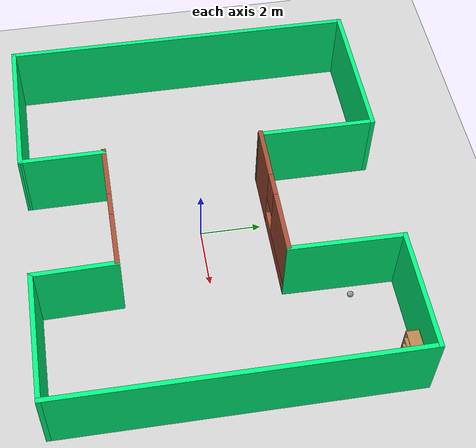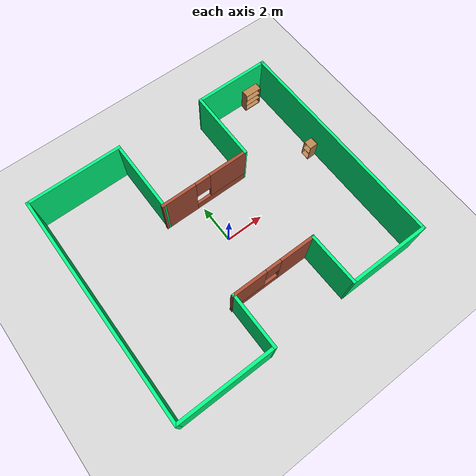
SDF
<sdf version="1.6">
 <world name="default">
  <plugin name="hello" filename="libhello.so"/>
  <light name="sun" type="directional">
   <pose>0 0 10 0 -0 0</pose>
   <diffuse>0.8 0.8 0.8 1</diffuse>
   <specular>0.2 0.2 0.2 1</specular>
   <attenuation>
    <range>1000</range>
    <constant>0.9</constant>
    <linear>0.01</linear>
    <quadratic>0.001</quadratic>
   </attenuation>
   <direction>-0.5 0.1 -0.9</direction>
  </light>
  <model name="ground_plane">
   <static>1</static>
   <link name="link">
    <collision name="collision">
     <geometry><plane><normal>0 0 1</normal><size>100 100</size></plane></geometry>
     <surface>
      <contact><collide_bitmask>65535</collide_bitmask></contact>
      <friction><ode><mu>100</mu><mu2>50</mu2></ode></friction>
     </surface>
    </collision>
    <visual name="visual">
     <cast_shadows>0</cast_shadows>
     <geometry><plane><normal>0 0 1</normal><size>100 100</size></plane></geometry>
     <material>
      <script><uri>file://media/materials/scripts/gazebo.material</uri><name>Gazebo/Grey</name></script>
     </material>
    </visual>
   </link>
  </model>
  <gravity>0 0 -9.8</gravity>
  <magnetic_field>6e-06 2.3e-05 -4.2e-05</magnetic_field>
  <atmosphere type="adiabatic"/>
  <physics name="default_physics" default="0" type="ode">
   <max_step_size>0.001</max_step_size>
   <real_time_factor>1</real_time_factor>
   <real_time_update_rate>1000</real_time_update_rate>
  </physics>
  <scene><ambient>0.4 0.4 0.4 1</ambient><background>0.7 0.7 0.7 1</background><shadows>1</shadows></scene>
  <spherical_coordinates>
   <surface_model>EARTH_WGS84</surface_model>
   <latitude_deg>0</latitude_deg>
   <longitude_deg>0</longitude_deg>
   <elevation>0</elevation>
   <heading_deg>0</heading_deg>
  </spherical_coordinates>
  <model name="singleFloor">
   <pose>-0.10986 0.232803 0 0 -0 0</pose>
   <link name="Wall_15">
    <collision name="Wall_15_Collision">
     <geometry><box><size>11.75 0.15 2.5</size></box></geometry>
     <pose>0 0 1.25 0 -0 0</pose>
    </collision>
    <visual name="Wall_15_Visual">
     <pose>0 0 1.25 0 -0 0</pose>
     <geometry><box><size>11.75 0.15 2.5</size></box></geometry>
     <material>
      <script><uri>file://media/materials/scripts/gazebo.material</uri><name>Gazebo/Grey</name></script>
      <ambient>0 1 0.498039 1</ambient>
     </material>
     <meta><layer>0</layer></meta>
    </visual>
    <pose>-6.66822 0.000135 0 0 -0 1.5708</pose>
   </link>
   <link name="Wall_18">
    <collision name="Wall_18_Collision">
     <geometry><box><size>5 0.15 2.5</size></box></geometry>
     <pose>0 0 1.25 0 -0 0</pose>
    </collision>
    <visual name="Wall_18_Visual">
     <pose>0 0 1.25 0 -0 0</pose>
     <geometry><box><size>5 0.15 2.5</size></box></geometry>
     <material>
      <script><uri>file://media/materials/scripts/gazebo.material</uri><name>Gazebo/Grey</name></script>
      <ambient>0 1 0.498039 1</ambient>
     </material>
     <meta><layer>0</layer></meta>
    </visual>
    <pose>-4.2434 5.79997 0 0 0 -6.8e-05</pose>
   </link>
   <link name="Wall_20">
    <collision name="Wall_20_Collision">
     <geometry><box><size>3.89387 0.15 2.5</size></box></geometry>
     <pose>0 0 1.25 0 -0 0</pose>
    </collision>
    <visual name="Wall_20_Visual">
     <pose>0 0 1.25 0 -0 0</pose>
     <geometry><box><size>3.89387 0.15 2.5</size></box></geometry>
     <material>
      <script><uri>file://media/materials/scripts/gazebo.material</uri><name>Gazebo/Grey</name></script>
      <ambient>0 1 0.498039 1</ambient>
     </material>
     <meta><layer>0</layer></meta>
    </visual>
    <pose>-1.82335 3.92788 0 0 0 -1.57334</pose>
   </link>
   <link name="Wall_21">
    <pose>0.42536 2.05595 0 0 -0 0</pose>
    <visual name="Wall_21_Visual_0">
     <pose>-1.44583 0 1.25 0 -0 0</pose>
     <geometry><box><size>1.85834 0.15 2.5</size></box></geometry>
     <material>
      <script><uri>file://media/materials/scripts/gazebo.material</uri><name>Gazebo/Bricks</name></script>
      <ambient>0 1 0.498039 1</ambient>
     </material>
     <meta><layer>0</layer></meta>
    </visual>
    <collision name="Wall_21_Collision_0">
     <geometry><box><size>1.85834 0.15 2.5</size></box></geometry>
     <pose>-1.44583 0 1.25 0 -0 0</pose>
    </collision>
    <visual name="Wall_21_Visual_1">
     <pose>0.929169 0 0.25 0 -0 0</pose>
     <geometry><box><size>2.89166 0.15 0.5</size></box></geometry>
     <material>
      <script><uri>file://media/materials/scripts/gazebo.material</uri><name>Gazebo/Bricks</name></script>
      <ambient>0 1 0.498039 1</ambient>
     </material>
     <meta><layer>0</layer></meta>
    </visual>
    <collision name="Wall_21_Collision_1">
     <geometry><box><size>2.89166 0.15 0.5</size></box></geometry>
     <pose>0.929169 0 0.25 0 -0 0</pose>
    </collision>
    <visual name="Wall_21_Visual_2">
     <pose>1.32917 0 1.5 0 -0 0</pose>
     <geometry><box><size>2.09166 0.15 2</size></box></geometry>
     <material>
      <script><uri>file://media/materials/scripts/gazebo.material</uri><name>Gazebo/Bricks</name></script>
      <ambient>0 1 0.498039 1</ambient>
     </material>
     <meta><layer>0</layer></meta>
    </visual>
    <collision name="Wall_21_Collision_2">
     <geometry><box><size>2.09166 0.15 2</size></box></geometry>
     <pose>1.32917 0 1.5 0 -0 0</pose>
    </collision>
    <visual name="Wall_21_Visual_3">
     <pose>-0.116661 0 1.9 0 -0 0</pose>
     <geometry><box><size>0.8 0.15 1.2</size></box></geometry>
     <material>
      <script><uri>file://media/materials/scripts/gazebo.material</uri><name>Gazebo/Bricks</name></script>
      <ambient>0 1 0.498039 1</ambient>
     </material>
     <meta><layer>0</layer></meta>
    </visual>
    <collision name="Wall_21_Collision_3">
     <geometry><box><size>0.8 0.15 1.2</size></box></geometry>
     <pose>-0.116661 0 1.9 0 -0 0</pose>
    </collision>
   </link>
   <link name="Wall_22">
    <collision name="Wall_22_Collision">
     <geometry><box><size>3.74416 0.15 2.5</size></box></geometry>
     <pose>0 0 1.25 0 -0 0</pose>
    </collision>
    <visual name="Wall_22_Visual">
     <pose>0 0 1.25 0 -0 0</pose>
     <geometry><box><size>3.74416 0.15 2.5</size></box></geometry>
     <material>
      <script><uri>file://media/materials/scripts/gazebo.material</uri><name>Gazebo/Grey</name></script>
      <ambient>0 1 0.498039 1</ambient>
     </material>
     <meta><layer>0</layer></meta>
    </visual>
    <pose>2.79515 3.85288 0 0 -0 1.55785</pose>
   </link>
   <link name="Wall_23">
    <collision name="Wall_23_Collision">
     <geometry><box><size>4 0.15 2.5</size></box></geometry>
     <pose>0 0 1.25 0 -0 0</pose>
    </collision>
    <visual name="Wall_23_Visual">
     <pose>0 0 1.25 0 -0 0</pose>
     <geometry><box><size>4 0.15 2.5</size></box></geometry>
     <material>
      <script><uri>file://media/materials/scripts/gazebo.material</uri><name>Gazebo/Grey</name></script>
      <ambient>0 1 0.498039 1</ambient>
     </material>
     <meta><layer>0</layer></meta>
    </visual>
    <pose>4.74341 5.6498 0 0 -0 0</pose>
   </link>
   <link name="Wall_25">
    <collision name="Wall_25_Collision">
     <geometry><box><size>11.5 0.15 2.5</size></box></geometry>
     <pose>0 0 1.25 0 -0 0</pose>
    </collision>
    <visual name="Wall_25_Visual">
     <pose>0 0 1.25 0 -0 0</pose>
     <geometry><box><size>11.5 0.15 2.5</size></box></geometry>
     <material>
      <script><uri>file://media/materials/scripts/gazebo.material</uri><name>Gazebo/Grey</name></script>
      <ambient>0 1 0.498039 1</ambient>
     </material>
     <meta><layer>0</layer></meta>
    </visual>
    <pose>6.66841 -0.025197 0 0 0 -1.5708</pose>
   </link>
   <link name="Wall_26">
    <collision name="Wall_26_Collision">
     <geometry><box><size>4.25 0.15 2.5</size></box></geometry>
     <pose>0 0 1.25 0 -0 0</pose>
    </collision>
    <visual name="Wall_26_Visual">
     <pose>0 0 1.25 0 -0 0</pose>
     <geometry><box><size>4.25 0.15 2.5</size></box></geometry>
     <material>
      <script><uri>file://media/materials/scripts/gazebo.material</uri><name>Gazebo/Grey</name></script>
      <ambient>0 1 0.498039 1</ambient>
     </material>
     <meta><layer>0</layer></meta>
    </visual>
    <pose>4.61841 -5.7002 0 0 -0 3.14159</pose>
   </link>
   <link name="Wall_27">
    <collision name="Wall_27_Collision">
     <geometry><box><size>2.74427 0.15 2.5</size></box></geometry>
     <pose>0 0 1.25 0 -0 0</pose>
    </collision>
    <visual name="Wall_27_Visual">
     <pose>0 0 1.25 0 -0 0</pose>
     <geometry><box><size>2.74427 0.15 2.5</size></box></geometry>
     <material>
      <script><uri>file://media/materials/scripts/gazebo.material</uri><name>Gazebo/Grey</name></script>
      <ambient>0 1 0.498039 1</ambient>
     </material>
     <meta><layer>0</layer></meta>
    </visual>
    <pose>2.54515 -4.40327 0 0 -0 1.58873</pose>
   </link>
   <link name="Wall_28">
    <pose>0.30036 -3.10634 0 0 -0 3.14159</pose>
    <visual name="Wall_28_Visual_0">
     <pose>-1.32917 0 1.25 0 -0 0</pose>
     <geometry><box><size>1.84166 0.15 2.5</size></box></geometry>
     <material>
      <script><uri>file://media/materials/scripts/gazebo.material</uri><name>Gazebo/Bricks</name></script>
      <ambient>0 1 0.498039 1</ambient>
     </material>
     <meta><layer>0</layer></meta>
    </visual>
    <collision name="Wall_28_Collision_0">
     <geometry><box><size>1.84166 0.15 2.5</size></box></geometry>
     <pose>-1.32917 0 1.25 0 -0 0</pose>
    </collision>
    <visual name="Wall_28_Visual_1">
     <pose>0.920831 0 0.25 0 -0 0</pose>
     <geometry><box><size>2.65834 0.15 0.5</size></box></geometry>
     <material>
      <script><uri>file://media/materials/scripts/gazebo.material</uri><name>Gazebo/Bricks</name></script>
      <ambient>0 1 0.498039 1</ambient>
     </material>
     <meta><layer>0</layer></meta>
    </visual>
    <collision name="Wall_28_Collision_1">
     <geometry><box><size>2.65834 0.15 0.5</size></box></geometry>
     <pose>0.920831 0 0.25 0 -0 0</pose>
    </collision>
    <visual name="Wall_28_Visual_2">
     <pose>1.32083 0 1.5 0 -0 0</pose>
     <geometry><box><size>1.85834 0.15 2</size></box></geometry>
     <material>
      <script><uri>file://media/materials/scripts/gazebo.material</uri><name>Gazebo/Bricks</name></script>
      <ambient>0 1 0.498039 1</ambient>
     </material>
     <meta><layer>0</layer></meta>
    </visual>
    <collision name="Wall_28_Collision_2">
     <geometry><box><size>1.85834 0.15 2</size></box></geometry>
     <pose>1.32083 0 1.5 0 -0 0</pose>
    </collision>
    <visual name="Wall_28_Visual_3">
     <pose>-0.008339 0 1.9 0 -0 0</pose>
     <geometry><box><size>0.8 0.15 1.2</size></box></geometry>
     <material>
      <script><uri>file://media/materials/scripts/gazebo.material</uri><name>Gazebo/Bricks</name></script>
      <ambient>0 1 0.498039 1</ambient>
     </material>
     <meta><layer>0</layer></meta>
    </visual>
    <collision name="Wall_28_Collision_3">
     <geometry><box><size>0.8 0.15 1.2</size></box></geometry>
     <pose>-0.008339 0 1.9 0 -0 0</pose>
    </collision>
   </link>
   <link name="Wall_29">
    <collision name="Wall_29_Collision">
     <geometry><box><size>2.84354 0.15 2.5</size></box></geometry>
     <pose>0 0 1.25 0 -0 0</pose>
    </collision>
    <visual name="Wall_29_Visual">
     <pose>0 0 1.25 0 -0 0</pose>
     <geometry><box><size>2.84354 0.15 2.5</size></box></geometry>
     <material>
      <script><uri>file://media/materials/scripts/gazebo.material</uri><name>Gazebo/Grey</name></script>
      <ambient>0 1 0.498039 1</ambient>
     </material>
     <meta><layer>0</layer></meta>
    </visual>
    <pose>-1.82317 -4.4531 0 0 0 -1.56712</pose>
   </link>
   <link name="Wall_30">
    <collision name="Wall_30_Collision">
     <geometry><box><size>5 0.15 2.5</size></box></geometry>
     <pose>0 0 1.25 0 -0 0</pose>
    </collision>
    <visual name="Wall_30_Visual">
     <pose>0 0 1.25 0 -0 0</pose>
     <geometry><box><size>5 0.15 2.5</size></box></geometry>
     <material>
      <script><uri>file://media/materials/scripts/gazebo.material</uri><name>Gazebo/Grey</name></script>
      <ambient>0 1 0.498039 1</ambient>
     </material>
     <meta><layer>0</layer></meta>
    </visual>
    <pose>-4.24322 -5.79986 0 0 -0 3.14159</pose>
   </link>
   <static>1</static>
  </model>
  <model name="cabinet">
   <static>1</static>
   <link name="cabinet_bottom_plate">
    <inertial>
     <pose>0 0 -1 0 -0 0</pose>
     <inertia><ixx>2.05</ixx><ixy>0</ixy><ixz>0</ixz><iyy>2.05</iyy><iyz>0</iyz><izz>2.05</izz></inertia>
     <mass>25</mass>
    </inertial>
    <collision name="cabinet_bottom_plate_geom">
     <pose>0 0 0.01 0 -0 0</pose>
     <geometry><box><size>0.45 0.45 0.02</size></box></geometry>
    </collision>
    <visual name="cabinet_bottom_plate_geom_visual">
     <pose>0 0 0.01 0 -0 0</pose>
     <geometry><box><size>0.45 0.45 0.02</size></box></geometry>
     <material>
      <script><uri>file://media/materials/scripts/gazebo.material</uri><name>Gazebo/Wood</name></script>
     </material>
    </visual>
    <collision name="cabinet_bottom_plate_geom_cabinet_back_plate">
     <pose>0.235 0 0.51 0 -0 0</pose>
     <geometry><box><size>0.02 0.45 1.02</size></box></geometry>
    </collision>
    <visual name="cabinet_bottom_plate_geom_cabinet_back_plate_visual">
     <pose>0.235 0 0.51 0 -0 0</pose>
     <geometry><box><size>0.02 0.45 1.02</size></box></geometry>
     <material>
      <script><uri>file://media/materials/scripts/gazebo.material</uri><name>Gazebo/Wood</name></script>
     </material>
    </visual>
    <collision name="cabinet_bottom_plate_geom_cabinet_left_plate">
     <pose>0 0.235 0.51 0 -0 0</pose>
     <geometry><box><size>0.45 0.02 1.02</size></box></geometry>
    </collision>
    <visual name="cabinet_bottom_plate_geom_cabinet_left_plate_visual">
     <pose>0 0.235 0.51 0 -0 0</pose>
     <geometry><box><size>0.45 0.02 1.02</size></box></geometry>
     <material>
      <script><uri>file://media/materials/scripts/gazebo.material</uri><name>Gazebo/Wood</name></script>
     </material>
    </visual>
    <collision name="cabinet_bottom_plate_geom_cabinet_middle_plate">
     <pose>0 0 0.51 0 -0 0</pose>
     <geometry><box><size>0.45 0.45 0.02</size></box></geometry>
    </collision>
    <visual name="cabinet_bottom_plate_geom_cabinet_middle_plate_visual">
     <pose>0 0 0.51 0 -0 0</pose>
     <geometry><box><size>0.45 0.45 0.02</size></box></geometry>
     <material>
      <script><uri>file://media/materials/scripts/gazebo.material</uri><name>Gazebo/Wood</name></script>
     </material>
    </visual>
    <collision name="cabinet_bottom_plate_geom_cabinet_right_plate">
     <pose>0 -0.235 0.51 0 -0 0</pose>
     <geometry><box><size>0.45 0.02 1.02</size></box></geometry>
    </collision>
    <visual name="cabinet_bottom_plate_geom_cabinet_right_plate_visual">
     <pose>0 -0.235 0.51 0 -0 0</pose>
     <geometry><box><size>0.45 0.02 1.02</size></box></geometry>
     <material>
      <script><uri>file://media/materials/scripts/gazebo.material</uri><name>Gazebo/Wood</name></script>
     </material>
    </visual>
    <collision name="cabinet_bottom_plate_geom_cabinet_top_plate">
     <pose>0 0 1.01 0 -0 0</pose>
     <geometry><box><size>0.45 0.45 0.02</size></box></geometry>
    </collision>
    <visual name="cabinet_bottom_plate_geom_cabinet_top_plate_visual">
     <pose>0 0 1.01 0 -0 0</pose>
     <geometry><box><size>0.45 0.45 0.02</size></box></geometry>
     <material>
      <script><uri>file://media/materials/scripts/gazebo.material</uri><name>Gazebo/Wood</name></script>
     </material>
    </visual>
   </link>
   <pose>6.20731 1.34098 0 0 -0 0</pose>
  </model>
  <model name="bookshelf">
   <static>1</static>
   <link name="link">
    <inertial><mass>1</mass></inertial>
    <collision name="back">
     <pose>0 0.005 0.6 0 -0 0</pose>
     <geometry><box><size>0.9 0.01 1.2</size></box></geometry>
    </collision>
    <visual name="visual1">
     <pose>0 0.005 0.6 0 -0 0</pose>
     <geometry><box><size>0.9 0.01 1.2</size></box></geometry>
     <material>
      <script><uri>file://media/materials/scripts/gazebo.material</uri><name>Gazebo/Wood</name></script>
     </material>
    </visual>
    <collision name="left_side">
     <pose>0.45 -0.195 0.6 0 -0 0</pose>
     <geometry><box><size>0.02 0.4 1.2</size></box></geometry>
    </collision>
    <visual name="visual2">
     <pose>0.45 -0.195 0.6 0 -0 0</pose>
     <geometry><box><size>0.02 0.4 1.2</size></box></geometry>
     <material>
      <script><uri>file://media/materials/scripts/gazebo.material</uri><name>Gazebo/Wood</name></script>
     </material>
    </visual>
    <collision name="right_side">
     <pose>-0.45 -0.195 0.6 0 -0 0</pose>
     <geometry><box><size>0.02 0.4 1.2</size></box></geometry>
    </collision>
    <visual name="visual3">
     <pose>-0.45 -0.195 0.6 0 -0 0</pose>
     <geometry><box><size>0.02 0.4 1.2</size></box></geometry>
     <material>
      <script><uri>file://media/materials/scripts/gazebo.material</uri><name>Gazebo/Wood</name></script>
     </material>
    </visual>
    <collision name="bottom">
     <pose>0 -0.195 0.03 0 -0 0</pose>
     <geometry><box><size>0.88 0.4 0.06</size></box></geometry>
    </collision>
    <visual name="visual4">
     <pose>0 -0.195 0.03 0 -0 0</pose>
     <geometry><box><size>0.88 0.4 0.06</size></box></geometry>
     <material>
      <script><uri>file://media/materials/scripts/gazebo.material</uri><name>Gazebo/Wood</name></script>
     </material>
    </visual>
    <collision name="top">
     <pose>0 -0.195 1.19 0 -0 0</pose>
     <geometry><box><size>0.88 0.4 0.02</size></box></geometry>
    </collision>
    <visual name="visual5">
     <pose>0 -0.195 1.19 0 -0 0</pose>
     <geometry><box><size>0.88 0.4 0.02</size></box></geometry>
     <material>
      <script><uri>file://media/materials/scripts/gazebo.material</uri><name>Gazebo/Wood</name></script>
     </material>
    </visual>
    <collision name="low_shelf">
     <pose>0 -0.195 0.43 0 -0 0</pose>
     <geometry><box><size>0.88 0.4 0.02</size></box></geometry>
    </collision>
    <visual name="visual6">
     <pose>0 -0.195 0.43 0 -0 0</pose>
     <geometry><box><size>0.88 0.4 0.02</size></box></geometry>
     <material>
      <script><uri>file://media/materials/scripts/gazebo.material</uri><name>Gazebo/Wood</name></script>
     </material>
    </visual>
    <collision name="high_shelf">
     <pose>0 -0.195 0.8 0 -0 0</pose>
     <geometry><box><size>0.88 0.4 0.02</size></box></geometry>
    </collision>
    <visual name="visual7">
     <pose>0 -0.195 0.8 0 -0 0</pose>
     <geometry><box><size>0.88 0.4 0.02</size></box></geometry>
     <material>
      <script><uri>file://media/materials/scripts/gazebo.material</uri><name>Gazebo/Wood</name></script>
     </material>
    </visual>
   </link>
   <pose>5.73819 5.79524 0 0 -0 0</pose>
  </model>
  <model name="my_ball">
   <link name="link_0">
    <inertial>
     <mass>1</mass>
     <inertia><ixx>0.1</ixx><ixy>0</ixy><ixz>0</ixz><iyy>0.1</iyy><iyz>0</iyz><izz>0.1</izz></inertia>
    </inertial>
    <visual name="visual">
     <geometry><sphere><radius>0.1</radius></sphere></geometry>
     <material>
      <lighting>1</lighting>
      <script><uri>file://media/materials/scripts/gazebo.material</uri><name>Gazebo/Grey</name></script>
      <shader type="pixel"><normal_map>__default__</normal_map></shader>
      <ambient>1 1 1 1</ambient>
      <diffuse>1 1 1 1</diffuse>
      <specular>1 1 1 1</specular>
      <emissive>1 1 1 1</emissive>
     </material>
    </visual>
    <collision name="collision">
     <geometry><sphere><radius>0.1</radius></sphere></geometry>
     <surface>
      <friction>
       <ode><mu>1</mu><mu2>1</mu2><fdir1>0 0 0</fdir1><slip1>0</slip1><slip2>0</slip2></ode>
       <torsional>
        <coefficient>1</coefficient>
        <patch_radius>0</patch_radius>
        <surface_radius>0</surface_radius>
        <use_patch_radius>1</use_patch_radius>
        <ode><slip>0</slip></ode>
       </torsional>
      </friction>
      <bounce><restitution_coefficient>0</restitution_coefficient><threshold>1e+06</threshold></bounce>
      <contact>
       <collide_without_contact>0</collide_without_contact>
       <collide_without_contact_bitmask>1</collide_without_contact_bitmask>
       <collide_bitmask>1</collide_bitmask>
       <ode>
        <soft_cfm>0</soft_cfm>
        <soft_erp>0.2</soft_erp>
        <kp>1e+13</kp>
        <kd>1</kd>
        <max_vel>0.01</max_vel>
        <min_depth>0</min_depth>
       </ode>
       <bullet>
        <split_impulse>1</split_impulse>
        <split_impulse_penetration_threshold>-0.01</split_impulse_penetration_threshold>
        <soft_cfm>0</soft_cfm>
        <soft_erp>0.2</soft_erp>
        <kp>1e+13</kp>
        <kd>1</kd>
       </bullet>
      </contact>
     </surface>
    </collision>
   </link>
   <static>0</static>
   <pose>3.11181 4.34765 0.1 0 -0 0</pose>
  </model>
 </world>
</sdf>
